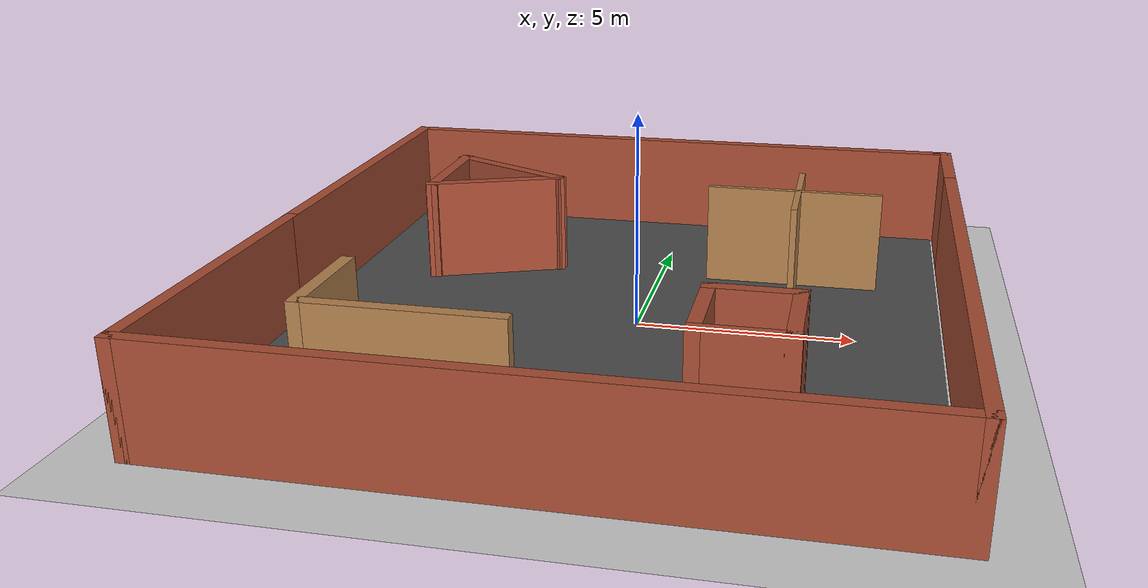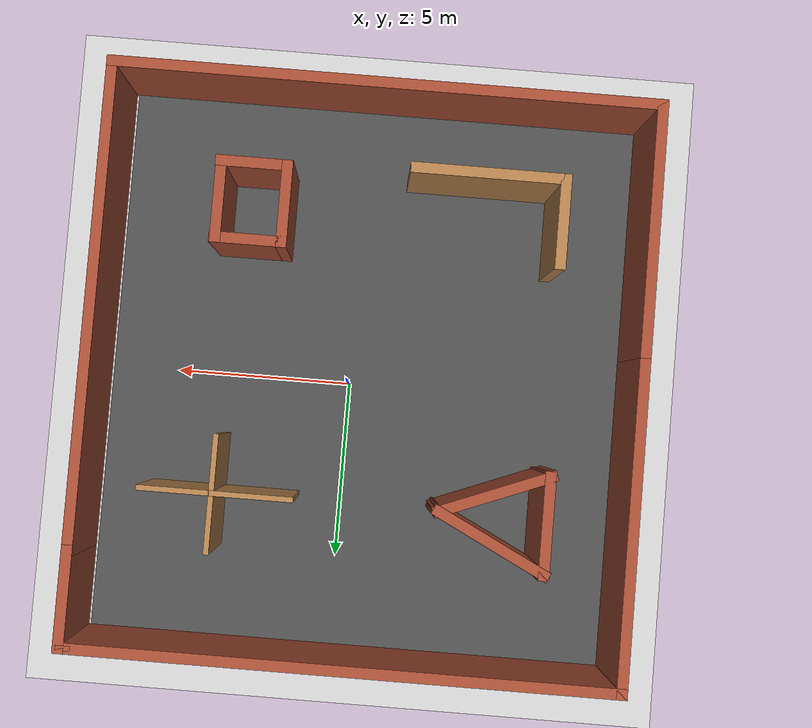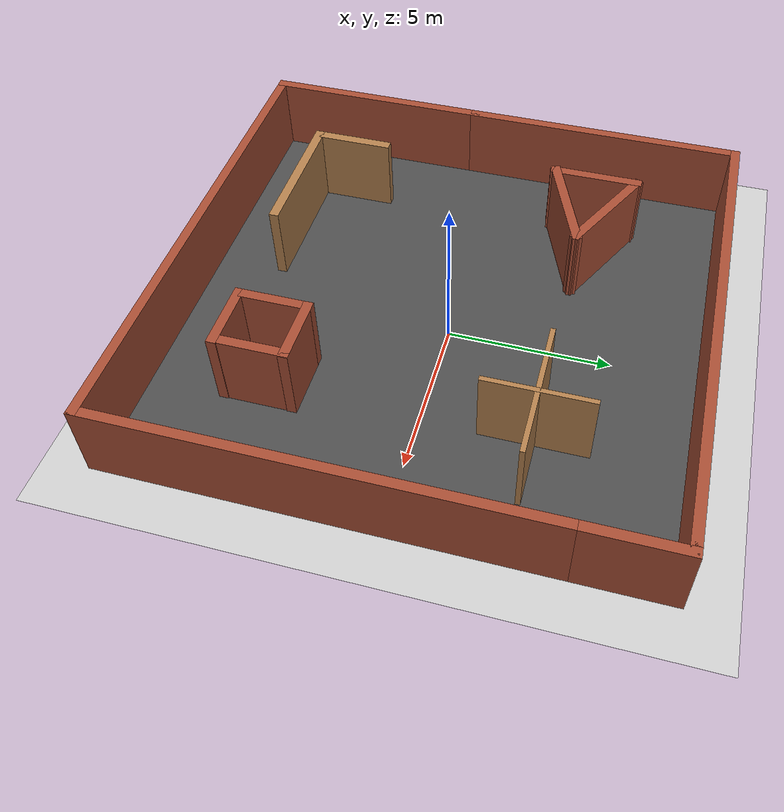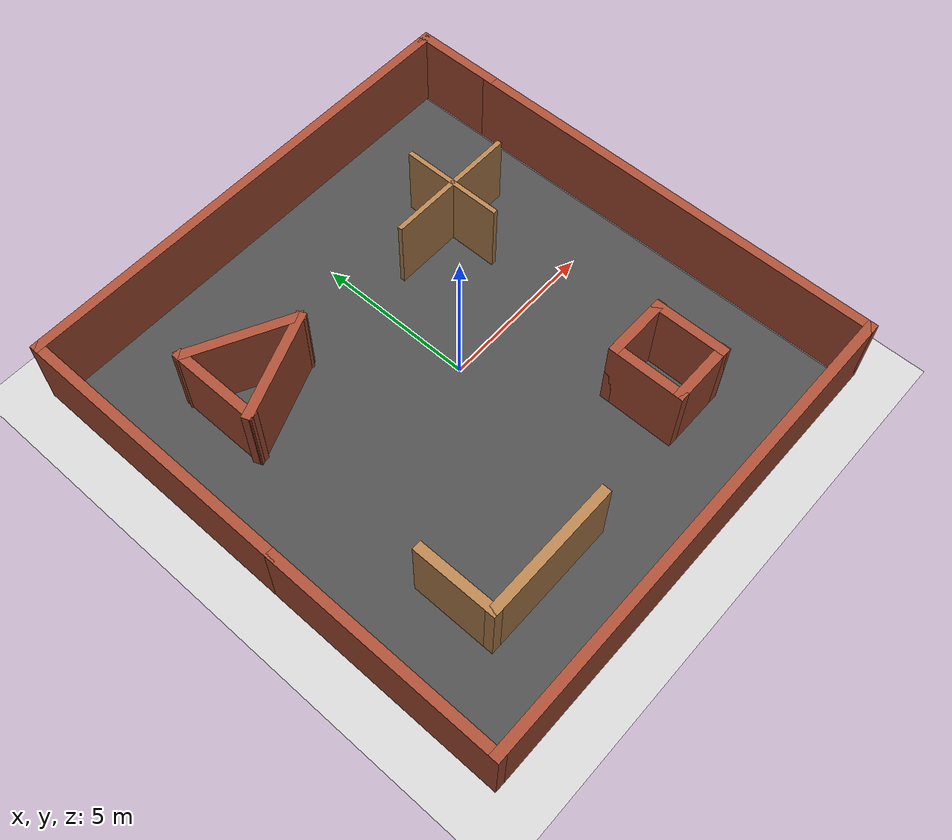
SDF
<sdf version="1.7">
 <world name="default">
  <light name="sun" type="directional">
   <pose>0 0 10 0 -0 0</pose>
   <diffuse>0.8 0.8 0.8 1</diffuse>
   <specular>0.2 0.2 0.2 1</specular>
   <attenuation>
    <range>1000</range>
    <constant>0.9</constant>
    <linear>0.01</linear>
    <quadratic>0.001</quadratic>
   </attenuation>
   <direction>-0.5 0.1 -0.9</direction>
   <spot><inner_angle>0</inner_angle><outer_angle>0</outer_angle><falloff>0</falloff></spot>
  </light>
  <model name="ground_plane">
   <static>1</static>
   <link name="link">
    <collision name="collision">
     <geometry><plane><normal>0 0 1</normal><size>100 100</size></plane></geometry>
     <surface><friction><ode><mu>100</mu><mu2>50</mu2></ode></friction></surface>
    </collision>
    <visual name="visual">
     <cast_shadows>0</cast_shadows>
     <geometry><plane><normal>0 0 1</normal><size>100 100</size></plane></geometry>
     <material>
      <script><uri>file://media/materials/scripts/gazebo.material</uri><name>Gazebo/Grey</name></script>
     </material>
    </visual>
    <velocity_decay><linear>0</linear><angular>0</angular></velocity_decay>
   </link>
  </model>
  <physics type="ode">
   <max_step_size>0.01</max_step_size>
   <real_time_factor>1</real_time_factor>
   <real_time_update_rate>100</real_time_update_rate>
  </physics>
  <scene><ambient>0.4 0.4 0.4 1</ambient><background>0.7 0.7 0.7 1</background><shadows>1</shadows></scene>
  <model name="asphalt_plane">
   <static>1</static>
   <link name="link">
    <collision name="collision"><geometry><box><size>14.7512 15.6633 0.1</size></box></geometry></collision>
    <visual name="visual">
     <cast_shadows>0</cast_shadows>
     <geometry><box><size>14.7512 15.6633 0.1</size></box></geometry>
     <material>
      <script>
       <uri>model://asphalt_plane/materials/scripts</uri>
       <uri>model://asphalt_plane/materials/textures</uri>
       <name>vrc/asphalt</name>
      </script>
     </material>
    </visual>
    <velocity_decay><linear>0</linear><angular>0</angular></velocity_decay>
   </link>
   <pose>-0.456152 -0.262346 0 0 -0 0</pose>
  </model>
  <gravity>0 0 -9.8</gravity>
  <magnetic_field>6e-06 2.3e-05 -4.2e-05</magnetic_field>
  <atmosphere type="adiabatic"/>
  <spherical_coordinates>
   <surface_model>EARTH_WGS84</surface_model>
   <latitude_deg>0</latitude_deg>
   <longitude_deg>0</longitude_deg>
   <elevation>0</elevation>
   <heading_deg>0</heading_deg>
  </spherical_coordinates>
  <model name="TD3Env">
   <pose>-0.22092 -0.57485 0 0 -0 0</pose>
   <link name="Wall_10">
    <collision name="Wall_10_Collision">
     <geometry><box><size>3.25 0.15 2.5</size></box></geometry>
     <pose>0 0 1.25 0 -0 0</pose>
    </collision>
    <visual name="Wall_10_Visual">
     <pose>0 0 1.25 0 -0 0</pose>
     <geometry><box><size>3.25 0.15 2.5</size></box></geometry>
     <material>
      <script><uri>file://media/materials/scripts/gazebo.material</uri><name>Gazebo/Wood</name></script>
      <ambient>1 1 1 1</ambient>
     </material>
     <meta><layer>0</layer></meta>
    </visual>
    <pose>3.6326 3.8967 0 0 -0 -1.5708</pose>
   </link>
   <link name="Wall_12">
    <collision name="Wall_12_Collision">
     <geometry><box><size>4.25 0.15 2.5</size></box></geometry>
     <pose>0 0 1.25 0 -0 0</pose>
    </collision>
    <visual name="Wall_12_Visual">
     <pose>0 0 1.25 0 -0 0</pose>
     <geometry><box><size>4.25 0.15 2.5</size></box></geometry>
     <material>
      <script><uri>file://media/materials/scripts/gazebo.material</uri><name>Gazebo/Wood</name></script>
      <ambient>1 1 1 1</ambient>
     </material>
     <meta><layer>0</layer></meta>
    </visual>
    <pose>3.54015 3.87293 0 0 -0 0</pose>
   </link>
   <link name="Wall_19">
    <collision name="Wall_19_Collision">
     <geometry><box><size>2.12421 0.3 2.5</size></box></geometry>
     <pose>0 0 1.25 0 -0 0</pose>
    </collision>
    <visual name="Wall_19_Visual">
     <pose>0 0 1.25 0 -0 0</pose>
     <geometry><box><size>2.12421 0.3 2.5</size></box></geometry>
     <material>
      <script><uri>file://media/materials/scripts/gazebo.material</uri><name>Gazebo/Bricks</name></script>
      <ambient>1 1 1 1</ambient>
     </material>
     <meta><layer>0</layer></meta>
    </visual>
    <pose>3.24403 -5.14715 0 0 -0 0</pose>
   </link>
   <link name="Wall_20">
    <collision name="Wall_20_Collision">
     <geometry><box><size>2.4 0.3 2.5</size></box></geometry>
     <pose>0 0 1.25 0 -0 0</pose>
    </collision>
    <visual name="Wall_20_Visual">
     <pose>0 0 1.25 0 -0 0</pose>
     <geometry><box><size>2.4 0.3 2.5</size></box></geometry>
     <material>
      <script><uri>file://media/materials/scripts/gazebo.material</uri><name>Gazebo/Bricks</name></script>
      <ambient>1 1 1 1</ambient>
     </material>
     <meta><layer>0</layer></meta>
    </visual>
    <pose>4.13602 -4.09715 0 0 -0 1.5708</pose>
   </link>
   <link name="Wall_21">
    <collision name="Wall_21_Collision">
     <geometry><box><size>2.12421 0.3 2.5</size></box></geometry>
     <pose>0 0 1.25 0 -0 0</pose>
    </collision>
    <visual name="Wall_21_Visual">
     <pose>0 0 1.25 0 -0 0</pose>
     <geometry><box><size>2.12421 0.3 2.5</size></box></geometry>
     <material>
      <script><uri>file://media/materials/scripts/gazebo.material</uri><name>Gazebo/Bricks</name></script>
      <ambient>1 1 1 1</ambient>
     </material>
     <meta><layer>0</layer></meta>
    </visual>
    <pose>3.24403 -3.04714 0 0 -0 3.14159</pose>
   </link>
   <link name="Wall_22">
    <collision name="Wall_22_Collision">
     <geometry><box><size>2.40049 0.3 2.5</size></box></geometry>
     <pose>0 0 1.25 0 -0 0</pose>
    </collision>
    <visual name="Wall_22_Visual">
     <pose>0 0 1.25 0 -0 0</pose>
     <geometry><box><size>2.40049 0.3 2.5</size></box></geometry>
     <material>
      <script><uri>file://media/materials/scripts/gazebo.material</uri><name>Gazebo/Bricks</name></script>
      <ambient>1 1 1 1</ambient>
     </material>
     <meta><layer>0</layer></meta>
    </visual>
    <pose>2.33192 -4.09715 0 0 -0 -1.5708</pose>
   </link>
   <link name="Wall_25">
    <collision name="Wall_25_Collision">
     <geometry><box><size>2.935 0.3 2.5</size></box></geometry>
     <pose>0 0 1.25 0 -0 0</pose>
    </collision>
    <visual name="Wall_25_Visual">
     <pose>0 0 1.25 0 -0 0</pose>
     <geometry><box><size>2.935 0.3 2.5</size></box></geometry>
     <material>
      <script><uri>file://media/materials/scripts/gazebo.material</uri><name>Gazebo/Bricks</name></script>
      <ambient>1 1 1 1</ambient>
     </material>
     <meta><layer>0</layer></meta>
    </visual>
    <pose>-5.43531 4.01646 0 0 -0 -1.57097</pose>
   </link>
   <link name="Wall_26">
    <collision name="Wall_26_Collision">
     <geometry><box><size>3.49343 0.3 2.5</size></box></geometry>
     <pose>0 0 1.25 0 -0 0</pose>
    </collision>
    <visual name="Wall_26_Visual">
     <pose>0 0 1.25 0 -0 0</pose>
     <geometry><box><size>3.49343 0.3 2.5</size></box></geometry>
     <material>
      <script><uri>file://media/materials/scripts/gazebo.material</uri><name>Gazebo/Bricks</name></script>
      <ambient>1 1 1 1</ambient>
     </material>
     <meta><layer>0</layer></meta>
    </visual>
    <pose>-3.9844 3.28246 0 0 -0 0.374032</pose>
   </link>
   <link name="Wall_28">
    <collision name="Wall_28_Collision">
     <geometry><box><size>3.58395 0.3 2.5</size></box></geometry>
     <pose>0 0 1.25 0 -0 0</pose>
    </collision>
    <visual name="Wall_28_Visual">
     <pose>0 0 1.25 0 -0 0</pose>
     <geometry><box><size>3.58395 0.3 2.5</size></box></geometry>
     <material>
      <script><uri>file://media/materials/scripts/gazebo.material</uri><name>Gazebo/Bricks</name></script>
      <ambient>1 1 1 1</ambient>
     </material>
     <meta><layer>0</layer></meta>
    </visual>
    <pose>-3.96658 4.59985 0 0 -0 2.67808</pose>
   </link>
   <link name="Wall_7">
    <collision name="Wall_7_Collision">
     <geometry><box><size>4.4 0.3 2.5</size></box></geometry>
     <pose>0 0 1.25 0 -0 0</pose>
    </collision>
    <visual name="Wall_7_Visual">
     <pose>0 0 1.25 0 -0 0</pose>
     <geometry><box><size>4.4 0.3 2.5</size></box></geometry>
     <material>
      <script><uri>file://media/materials/scripts/gazebo.material</uri><name>Gazebo/Wood</name></script>
      <ambient>1 1 1 1</ambient>
     </material>
     <meta><layer>0</layer></meta>
    </visual>
    <pose>-3.21808 -5.38514 0 0 -0 3.14159</pose>
   </link>
   <link name="Wall_8">
    <collision name="Wall_8_Collision">
     <geometry><box><size>2.62412 0.3 2.5</size></box></geometry>
     <pose>0 0 1.25 0 -0 0</pose>
    </collision>
    <visual name="Wall_8_Visual">
     <pose>0 0 1.25 0 -0 0</pose>
     <geometry><box><size>2.62412 0.3 2.5</size></box></geometry>
     <material>
      <script><uri>file://media/materials/scripts/gazebo.material</uri><name>Gazebo/Wood</name></script>
      <ambient>1 1 1 1</ambient>
     </material>
     <meta><layer>0</layer></meta>
    </visual>
    <pose>-5.26808 -4.22314 0 0 -0 1.5708</pose>
   </link>
   <static>1</static>
  </model>
  <model name="TCC_Minor_wall">
   <pose>-0.42 -0.245 0 0 -0 0</pose>
   <link name="Wall_11">
    <collision name="Wall_11_Collision">
     <geometry><box><size>9.15 0.3 2.5</size></box></geometry>
     <pose>0 0 1.25 0 -0 0</pose>
    </collision>
    <visual name="Wall_11_Visual">
     <pose>0 0 1.25 0 -0 0</pose>
     <geometry><box><size>9.15 0.3 2.5</size></box></geometry>
     <material>
      <script><uri>file://media/materials/scripts/gazebo.material</uri><name>Gazebo/Bricks</name></script>
      <ambient>1 1 1 1</ambient>
     </material>
     <meta><layer>0</layer></meta>
    </visual>
    <pose>-7.55 3.55 0 0 -0 1.5708</pose>
   </link>
   <link name="Wall_12">
    <collision name="Wall_12_Collision">
     <geometry><box><size>15.15 0.3 2.5</size></box></geometry>
     <pose>0 0 1.25 0 -0 0</pose>
    </collision>
    <visual name="Wall_12_Visual">
     <pose>0 0 1.25 0 -0 0</pose>
     <geometry><box><size>15.15 0.3 2.5</size></box></geometry>
     <material>
      <script><uri>file://media/materials/scripts/gazebo.material</uri><name>Gazebo/Bricks</name></script>
      <ambient>1 1 1 1</ambient>
     </material>
     <meta><layer>0</layer></meta>
    </visual>
    <pose>-0.125 7.975 0 0 -0 0</pose>
   </link>
   <link name="Wall_14">
    <collision name="Wall_14_Collision">
     <geometry><box><size>2.9 0.3 2.5</size></box></geometry>
     <pose>0 0 1.25 0 -0 0</pose>
    </collision>
    <visual name="Wall_14_Visual">
     <pose>0 0 1.25 0 -0 0</pose>
     <geometry><box><size>2.9 0.3 2.5</size></box></geometry>
     <material>
      <script><uri>file://media/materials/scripts/gazebo.material</uri><name>Gazebo/Bricks</name></script>
      <ambient>1 1 1 1</ambient>
     </material>
     <meta><layer>0</layer></meta>
    </visual>
    <pose>7.55 6.675 0 0 -0 1.5708</pose>
   </link>
   <link name="Wall_15">
    <collision name="Wall_15_Collision">
     <geometry><box><size>0.4 0.15 2.5</size></box></geometry>
     <pose>0 0 1.25 0 -0 0</pose>
    </collision>
    <visual name="Wall_15_Visual">
     <pose>0 0 1.25 0 -0 0</pose>
     <geometry><box><size>0.4 0.15 2.5</size></box></geometry>
     <material>
      <script><uri>file://media/materials/scripts/gazebo.material</uri><name>Gazebo/Bricks</name></script>
      <ambient>1 1 1 1</ambient>
     </material>
     <meta><layer>0</layer></meta>
    </visual>
    <pose>7.425 7.975 0 0 -0 -3.14159</pose>
   </link>
   <link name="Wall_6">
    <collision name="Wall_6_Collision">
     <geometry><box><size>7.4 0.3 2.5</size></box></geometry>
     <pose>0 0 1.25 0 -0 0</pose>
    </collision>
    <visual name="Wall_6_Visual">
     <pose>0 0 1.25 0 -0 0</pose>
     <geometry><box><size>7.4 0.3 2.5</size></box></geometry>
     <material>
      <script><uri>file://media/materials/scripts/gazebo.material</uri><name>Gazebo/Bricks</name></script>
      <ambient>1 1 1 1</ambient>
     </material>
     <meta><layer>0</layer></meta>
    </visual>
    <pose>-7.55 -4.425 0 0 -0 -1.5708</pose>
   </link>
   <link name="Wall_7">
    <collision name="Wall_7_Collision">
     <geometry><box><size>15.4 0.3 2.5</size></box></geometry>
     <pose>0 0 1.25 0 -0 0</pose>
    </collision>
    <visual name="Wall_7_Visual">
     <pose>0 0 1.25 0 -0 0</pose>
     <geometry><box><size>15.4 0.3 2.5</size></box></geometry>
     <material>
      <script><uri>file://media/materials/scripts/gazebo.material</uri><name>Gazebo/Bricks</name></script>
      <ambient>1 1 1 1</ambient>
     </material>
     <meta><layer>0</layer></meta>
    </visual>
    <pose>-0 -7.975 0 0 -0 0</pose>
   </link>
   <link name="Wall_8">
    <collision name="Wall_8_Collision">
     <geometry><box><size>13.65 0.3 2.5</size></box></geometry>
     <pose>0 0 1.25 0 -0 0</pose>
    </collision>
    <visual name="Wall_8_Visual">
     <pose>0 0 1.25 0 -0 0</pose>
     <geometry><box><size>13.65 0.3 2.5</size></box></geometry>
     <material>
      <script><uri>file://media/materials/scripts/gazebo.material</uri><name>Gazebo/Bricks</name></script>
      <ambient>1 1 1 1</ambient>
     </material>
     <meta><layer>0</layer></meta>
    </visual>
    <pose>7.55 -1.3 0 0 -0 1.5708</pose>
   </link>
   <static>1</static>
  </model>
 </world>
</sdf>
